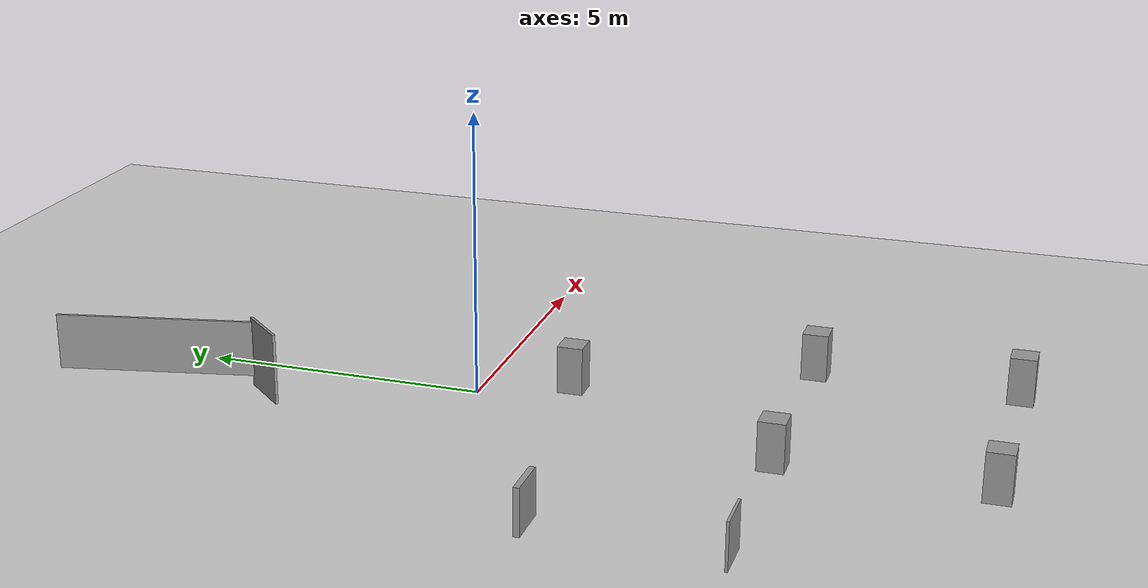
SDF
<sdf version="1.7">
 <world name="default">
  <light name="sun" type="directional">
   <pose>0 0 10 0 -0 0</pose>
   <diffuse>0.8 0.8 0.8 1</diffuse>
   <specular>0.2 0.2 0.2 1</specular>
   <attenuation>
    <range>1000</range>
    <constant>0.9</constant>
    <linear>0.01</linear>
    <quadratic>0.001</quadratic>
   </attenuation>
   <direction>0 0.5 -0.9</direction>
   <spot><inner_angle>0</inner_angle><outer_angle>0</outer_angle><falloff>0</falloff></spot>
  </light>
  <light name="point_light" type="point">
   <pose>0 -0.377195 6.59868 0 -0 0</pose>
   <diffuse>0.784314 0.784314 0.784314 1</diffuse>
   <specular>0.0980392 0.0980392 0.0980392 1</specular>
   <attenuation>
    <range>50</range>
    <constant>0.8</constant>
    <linear>0</linear>
    <quadratic>0.001</quadratic>
   </attenuation>
   <cast_shadows>0</cast_shadows>
   <direction>0 0 -1</direction>
   <spot><inner_angle>0</inner_angle><outer_angle>0</outer_angle><falloff>0</falloff></spot>
  </light>
  <model name="ground_plane">
   <static>1</static>
   <link name="link">
    <collision name="collision">
     <geometry><plane><normal>0 0 1</normal><size>100 100</size></plane></geometry>
     <surface>
      <contact><collide_bitmask>65535</collide_bitmask></contact>
      <friction><ode><mu>100</mu><mu2>50</mu2></ode></friction>
     </surface>
    </collision>
    <visual name="visual">
     <cast_shadows>0</cast_shadows>
     <geometry><plane><normal>0 0 1</normal><size>100 100</size></plane></geometry>
     <material>
      <script><uri>file://media/materials/scripts/gazebo.material</uri><name>Gazebo/Grey</name></script>
     </material>
    </visual>
   </link>
  </model>
  <gravity>0 0 -9.8</gravity>
  <magnetic_field>6e-06 2.3e-05 -4.2e-05</magnetic_field>
  <atmosphere type="adiabatic"/>
  <physics type="ode">
   <max_step_size>0.001</max_step_size>
   <real_time_factor>1</real_time_factor>
   <real_time_update_rate>1000</real_time_update_rate>
  </physics>
  <scene><ambient>0.4 0.4 0.4 1</ambient><background>0.7 0.7 0.7 1</background><shadows>1</shadows></scene>
  <spherical_coordinates>
   <surface_model>EARTH_WGS84</surface_model>
   <latitude_deg>0</latitude_deg>
   <longitude_deg>0</longitude_deg>
   <elevation>0</elevation>
   <heading_deg>0</heading_deg>
  </spherical_coordinates>
  <model name="table_wall_1">
   <link name="link">
    <inertial>
     <mass>1</mass>
     <inertia>
      <ixx>0.166667</ixx>
      <ixy>0</ixy>
      <ixz>0</ixz>
      <iyy>0.166667</iyy>
      <iyz>0</iyz>
      <izz>0.166667</izz>
     </inertia>
    </inertial>
    <pose>-0.045905 -0.224669 0 0 -0 0.842734</pose>
    <visual name="visual">
     <geometry><box><size>1 0.05 1.5</size></box></geometry>
     <material>
      <script><name>Gazebo/Grey</name><uri>file://media/materials/scripts/gazebo.material</uri></script>
      <shader type="pixel"><normal_map>__default__</normal_map></shader>
      <ambient>0.3 0.3 0.3 1</ambient>
      <diffuse>0.7 0.7 0.7 1</diffuse>
      <specular>0.01 0.01 0.01 1</specular>
      <emissive>0 0 0 1</emissive>
     </material>
    </visual>
    <collision name="collision">
     <geometry><box><size>1 0.05 1.5</size></box></geometry>
     <surface>
      <friction>
       <ode><mu>1</mu><mu2>1</mu2><fdir1>0 0 0</fdir1><slip1>0</slip1><slip2>0</slip2></ode>
       <torsional>
        <coefficient>1</coefficient>
        <patch_radius>0</patch_radius>
        <surface_radius>0</surface_radius>
        <use_patch_radius>1</use_patch_radius>
        <ode><slip>0</slip></ode>
       </torsional>
      </friction>
      <bounce><restitution_coefficient>0</restitution_coefficient><threshold>1e+06</threshold></bounce>
      <contact>
       <collide_without_contact>0</collide_without_contact>
       <collide_without_contact_bitmask>1</collide_without_contact_bitmask>
       <collide_bitmask>1</collide_bitmask>
       <ode>
        <soft_cfm>0</soft_cfm>
        <soft_erp>0.2</soft_erp>
        <kp>1e+13</kp>
        <kd>1</kd>
        <max_vel>0.01</max_vel>
        <min_depth>0</min_depth>
       </ode>
       <bullet>
        <split_impulse>1</split_impulse>
        <split_impulse_penetration_threshold>-0.01</split_impulse_penetration_threshold>
        <soft_cfm>0</soft_cfm>
        <soft_erp>0.2</soft_erp>
        <kp>1e+13</kp>
        <kd>1</kd>
       </bullet>
      </contact>
     </surface>
    </collision>
   </link>
   <static>1</static>
   <pose>-1.12847 3.6998 0.5 0 -0 0</pose>
  </model>
  <model name="table_leg_thin">
   <link name="link_2">
    <inertial>
     <mass>1</mass>
     <inertia>
      <ixx>0.166667</ixx>
      <ixy>0</ixy>
      <ixz>0</ixz>
      <iyy>0.166667</iyy>
      <iyz>0</iyz>
      <izz>0.166667</izz>
     </inertia>
    </inertial>
    <pose>-1e-06 5e-06 0 0 -0 0</pose>
    <visual name="visual">
     <geometry><box><size>0.75 0.1 0.8</size></box></geometry>
     <material>
      <lighting>1</lighting>
      <script><uri>file://media/materials/scripts/gazebo.material</uri><name>Gazebo/Grey</name></script>
      <shader type="pixel"><normal_map>__default__</normal_map></shader>
      <ambient>0.3 0.3 0.3 1</ambient>
      <diffuse>0.7 0.7 0.7 1</diffuse>
      <specular>0.01 0.01 0.01 1</specular>
      <emissive>0 0 0 1</emissive>
     </material>
    </visual>
    <collision name="collision">
     <geometry><box><size>0.75 0.1 0.8</size></box></geometry>
     <surface>
      <friction>
       <ode><mu>1</mu><mu2>1</mu2><fdir1>0 0 0</fdir1><slip1>0</slip1><slip2>0</slip2></ode>
       <torsional>
        <coefficient>1</coefficient>
        <patch_radius>0</patch_radius>
        <surface_radius>0</surface_radius>
        <use_patch_radius>1</use_patch_radius>
        <ode><slip>0</slip></ode>
       </torsional>
      </friction>
      <bounce><restitution_coefficient>0</restitution_coefficient><threshold>1e+06</threshold></bounce>
      <contact>
       <collide_without_contact>0</collide_without_contact>
       <collide_without_contact_bitmask>1</collide_without_contact_bitmask>
       <collide_bitmask>1</collide_bitmask>
       <ode>
        <soft_cfm>0</soft_cfm>
        <soft_erp>0.2</soft_erp>
        <kp>1e+13</kp>
        <kd>1</kd>
        <max_vel>0.01</max_vel>
        <min_depth>0</min_depth>
       </ode>
       <bullet>
        <split_impulse>1</split_impulse>
        <split_impulse_penetration_threshold>-0.01</split_impulse_penetration_threshold>
        <soft_cfm>0</soft_cfm>
        <soft_erp>0.2</soft_erp>
        <kp>1e+13</kp>
        <kd>1</kd>
       </bullet>
      </contact>
     </surface>
    </collision>
   </link>
   <static>1</static>
   <allow_auto_disable>0</allow_auto_disable>
   <pose>-4.67945 -2.44706 0.5 0 -0 0</pose>
  </model>
  <model name="table_leg_thinn">
   <link name="link_2">
    <inertial>
     <mass>1</mass>
     <inertia>
      <ixx>0.166667</ixx>
      <ixy>0</ixy>
      <ixz>0</ixz>
      <iyy>0.166667</iyy>
      <iyz>0</iyz>
      <izz>0.166667</izz>
     </inertia>
    </inertial>
    <pose>-1e-06 5e-06 0 0 -0 0</pose>
    <visual name="visual">
     <geometry><box><size>0.75 0.045 0.8</size></box></geometry>
     <material>
      <lighting>1</lighting>
      <script><uri>file://media/materials/scripts/gazebo.material</uri><name>Gazebo/Grey</name></script>
      <shader type="pixel"><normal_map>__default__</normal_map></shader>
      <ambient>0.3 0.3 0.3 1</ambient>
      <diffuse>0.7 0.7 0.7 1</diffuse>
      <specular>0.01 0.01 0.01 1</specular>
      <emissive>0 0 0 1</emissive>
     </material>
    </visual>
    <collision name="collision">
     <geometry><box><size>0.75 0.045 0.8</size></box></geometry>
     <surface>
      <friction>
       <ode><mu>1</mu><mu2>1</mu2><fdir1>0 0 0</fdir1><slip1>0</slip1><slip2>0</slip2></ode>
       <torsional>
        <coefficient>1</coefficient>
        <patch_radius>0</patch_radius>
        <surface_radius>0</surface_radius>
        <use_patch_radius>1</use_patch_radius>
        <ode><slip>0</slip></ode>
       </torsional>
      </friction>
      <bounce><restitution_coefficient>0</restitution_coefficient><threshold>1e+06</threshold></bounce>
      <contact>
       <collide_without_contact>0</collide_without_contact>
       <collide_without_contact_bitmask>1</collide_without_contact_bitmask>
       <collide_bitmask>1</collide_bitmask>
       <ode>
        <soft_cfm>0</soft_cfm>
        <soft_erp>0.2</soft_erp>
        <kp>1e+13</kp>
        <kd>1</kd>
        <max_vel>0.01</max_vel>
        <min_depth>0</min_depth>
       </ode>
       <bullet>
        <split_impulse>1</split_impulse>
        <split_impulse_penetration_threshold>-0.01</split_impulse_penetration_threshold>
        <soft_cfm>0</soft_cfm>
        <soft_erp>0.2</soft_erp>
        <kp>1e+13</kp>
        <kd>1</kd>
       </bullet>
      </contact>
     </surface>
    </collision>
   </link>
   <static>1</static>
   <pose>-4.67706 -5.56959 0.456298 0 -0 0</pose>
  </model>
  <model name="table_leg_long">
   <link name="link">
    <inertial>
     <mass>1</mass>
     <inertia>
      <ixx>0.166667</ixx>
      <ixy>0</ixy>
      <ixz>0</ixz>
      <iyy>0.166667</iyy>
      <iyz>0</iyz>
      <izz>0.166667</izz>
     </inertia>
    </inertial>
    <pose>-0.172485 -0.052465 0.171943 0 0 -1.56149</pose>
    <visual name="visual">
     <geometry><box><size>3.5 0.05 1</size></box></geometry>
     <material>
      <script><name>Gazebo/Grey</name><uri>file://media/materials/scripts/gazebo.material</uri></script>
      <shader type="pixel"><normal_map>__default__</normal_map></shader>
      <ambient>0.3 0.3 0.3 1</ambient>
      <diffuse>0.7 0.7 0.7 1</diffuse>
      <specular>0.01 0.01 0.01 1</specular>
      <emissive>0 0 0 1</emissive>
     </material>
    </visual>
    <collision name="collision">
     <geometry><box><size>3.5 0.05 1</size></box></geometry>
     <surface>
      <friction>
       <ode><mu>1</mu><mu2>1</mu2><fdir1>0 0 0</fdir1><slip1>0</slip1><slip2>0</slip2></ode>
       <torsional>
        <coefficient>1</coefficient>
        <patch_radius>0</patch_radius>
        <surface_radius>0</surface_radius>
        <use_patch_radius>1</use_patch_radius>
        <ode><slip>0</slip></ode>
       </torsional>
      </friction>
      <bounce><restitution_coefficient>0</restitution_coefficient><threshold>1e+06</threshold></bounce>
      <contact>
       <collide_without_contact>0</collide_without_contact>
       <collide_without_contact_bitmask>1</collide_without_contact_bitmask>
       <collide_bitmask>1</collide_bitmask>
       <ode>
        <soft_cfm>0</soft_cfm>
        <soft_erp>0.2</soft_erp>
        <kp>1e+13</kp>
        <kd>1</kd>
        <max_vel>0.01</max_vel>
        <min_depth>0</min_depth>
       </ode>
       <bullet>
        <split_impulse>1</split_impulse>
        <split_impulse_penetration_threshold>-0.01</split_impulse_penetration_threshold>
        <soft_cfm>0</soft_cfm>
        <soft_erp>0.2</soft_erp>
        <kp>1e+13</kp>
        <kd>1</kd>
       </bullet>
      </contact>
     </surface>
    </collision>
   </link>
   <static>1</static>
   <pose>-1.07969 5.62499 0.5 0 -0 0.20067</pose>
  </model>
  <model name="table_legg">
   <link name="link_0">
    <inertial>
     <mass>1</mass>
     <inertia>
      <ixx>0.166667</ixx>
      <ixy>0</ixy>
      <ixz>0</ixz>
      <iyy>0.166667</iyy>
      <iyz>0</iyz>
      <izz>0.166667</izz>
     </inertia>
    </inertial>
    <pose>0.047838 -0.022607 -0.085297 -0.082248 0.059205 0.012938</pose>
    <visual name="visual">
     <geometry><box><size>0.45 0.45 0.85</size></box></geometry>
     <material>
      <lighting>1</lighting>
      <script><uri>file://media/materials/scripts/gazebo.material</uri><name>Gazebo/Grey</name></script>
      <shader type="pixel"><normal_map>__default__</normal_map></shader>
      <ambient>0.3 0.3 0.3 1</ambient>
      <diffuse>0.7 0.7 0.7 1</diffuse>
      <specular>0.01 0.01 0.01 1</specular>
      <emissive>0 0 0 1</emissive>
     </material>
    </visual>
    <collision name="collision">
     <geometry><box><size>0.45 0.45 0.85</size></box></geometry>
     <surface>
      <friction>
       <ode><mu>1</mu><mu2>1</mu2><fdir1>0 0 0</fdir1><slip1>0</slip1><slip2>0</slip2></ode>
       <torsional>
        <coefficient>1</coefficient>
        <patch_radius>0</patch_radius>
        <surface_radius>0</surface_radius>
        <use_patch_radius>1</use_patch_radius>
        <ode><slip>0</slip></ode>
       </torsional>
      </friction>
      <bounce><restitution_coefficient>0</restitution_coefficient><threshold>1e+06</threshold></bounce>
      <contact>
       <collide_without_contact>0</collide_without_contact>
       <collide_without_contact_bitmask>1</collide_without_contact_bitmask>
       <collide_bitmask>1</collide_bitmask>
       <ode>
        <soft_cfm>0</soft_cfm>
        <soft_erp>0.2</soft_erp>
        <kp>1e+13</kp>
        <kd>1</kd>
        <max_vel>0.01</max_vel>
        <min_depth>0</min_depth>
       </ode>
       <bullet>
        <split_impulse>1</split_impulse>
        <split_impulse_penetration_threshold>-0.01</split_impulse_penetration_threshold>
        <soft_cfm>0</soft_cfm>
        <soft_erp>0.2</soft_erp>
        <kp>1e+13</kp>
        <kd>1</kd>
       </bullet>
      </contact>
     </surface>
    </collision>
   </link>
   <static>1</static>
   <pose>0.439816 -1.57603 0.583964 0.083146 -0.057935 -0.017786</pose>
  </model>
  <model name="table_legg_clone">
   <link name="link_0">
    <inertial>
     <mass>1</mass>
     <inertia>
      <ixx>0.166667</ixx>
      <ixy>0</ixy>
      <ixz>0</ixz>
      <iyy>0.166667</iyy>
      <iyz>0</iyz>
      <izz>0.166667</izz>
     </inertia>
    </inertial>
    <pose>0.047838 -0.022607 -0.085297 -0.082248 0.059205 0.012938</pose>
    <visual name="visual">
     <geometry><box><size>0.45 0.45 0.85</size></box></geometry>
     <material>
      <lighting>1</lighting>
      <script><uri>file://media/materials/scripts/gazebo.material</uri><name>Gazebo/Grey</name></script>
      <shader type="pixel"><normal_map>__default__</normal_map></shader>
      <ambient>0.3 0.3 0.3 1</ambient>
      <diffuse>0.7 0.7 0.7 1</diffuse>
      <specular>0.01 0.01 0.01 1</specular>
      <emissive>0 0 0 1</emissive>
     </material>
    </visual>
    <collision name="collision">
     <geometry><box><size>0.45 0.45 0.85</size></box></geometry>
     <surface>
      <friction>
       <ode><mu>1</mu><mu2>1</mu2><fdir1>0 0 0</fdir1><slip1>0</slip1><slip2>0</slip2></ode>
       <torsional>
        <coefficient>1</coefficient>
        <patch_radius>0</patch_radius>
        <surface_radius>0</surface_radius>
        <use_patch_radius>1</use_patch_radius>
        <ode><slip>0</slip></ode>
       </torsional>
      </friction>
      <bounce><restitution_coefficient>0</restitution_coefficient><threshold>1e+06</threshold></bounce>
      <contact>
       <collide_without_contact>0</collide_without_contact>
       <collide_without_contact_bitmask>1</collide_without_contact_bitmask>
       <collide_bitmask>1</collide_bitmask>
       <ode>
        <soft_cfm>0</soft_cfm>
        <soft_erp>0.2</soft_erp>
        <kp>1e+13</kp>
        <kd>1</kd>
        <max_vel>0.01</max_vel>
        <min_depth>0</min_depth>
       </ode>
       <bullet>
        <split_impulse>1</split_impulse>
        <split_impulse_penetration_threshold>-0.01</split_impulse_penetration_threshold>
        <soft_cfm>0</soft_cfm>
        <soft_erp>0.2</soft_erp>
        <kp>1e+13</kp>
        <kd>1</kd>
       </bullet>
      </contact>
     </surface>
    </collision>
   </link>
   <static>1</static>
   <pose>2.34142 -5.4584 0.583964 0.083146 -0.057935 -0.017786</pose>
  </model>
  <model name="table_legg_clone_0">
   <link name="link_0">
    <inertial>
     <mass>1</mass>
     <inertia>
      <ixx>0.166667</ixx>
      <ixy>0</ixy>
      <ixz>0</ixz>
      <iyy>0.166667</iyy>
      <iyz>0</iyz>
      <izz>0.166667</izz>
     </inertia>
    </inertial>
    <pose>0.047838 -0.022607 -0.085297 -0.082248 0.059205 0.012938</pose>
    <visual name="visual">
     <geometry><box><size>0.45 0.45 0.85</size></box></geometry>
     <material>
      <lighting>1</lighting>
      <script><uri>file://media/materials/scripts/gazebo.material</uri><name>Gazebo/Grey</name></script>
      <shader type="pixel"><normal_map>__default__</normal_map></shader>
      <ambient>0.3 0.3 0.3 1</ambient>
      <diffuse>0.7 0.7 0.7 1</diffuse>
      <specular>0.01 0.01 0.01 1</specular>
      <emissive>0 0 0 1</emissive>
     </material>
    </visual>
    <collision name="collision">
     <geometry><box><size>0.45 0.45 0.85</size></box></geometry>
     <surface>
      <friction>
       <ode><mu>1</mu><mu2>1</mu2><fdir1>0 0 0</fdir1><slip1>0</slip1><slip2>0</slip2></ode>
       <torsional>
        <coefficient>1</coefficient>
        <patch_radius>0</patch_radius>
        <surface_radius>0</surface_radius>
        <use_patch_radius>1</use_patch_radius>
        <ode><slip>0</slip></ode>
       </torsional>
      </friction>
      <bounce><restitution_coefficient>0</restitution_coefficient><threshold>1e+06</threshold></bounce>
      <contact>
       <collide_without_contact>0</collide_without_contact>
       <collide_without_contact_bitmask>1</collide_without_contact_bitmask>
       <collide_bitmask>1</collide_bitmask>
       <ode>
        <soft_cfm>0</soft_cfm>
        <soft_erp>0.2</soft_erp>
        <kp>1e+13</kp>
        <kd>1</kd>
        <max_vel>0.01</max_vel>
        <min_depth>0</min_depth>
       </ode>
       <bullet>
        <split_impulse>1</split_impulse>
        <split_impulse_penetration_threshold>-0.01</split_impulse_penetration_threshold>
        <soft_cfm>0</soft_cfm>
        <soft_erp>0.2</soft_erp>
        <kp>1e+13</kp>
        <kd>1</kd>
       </bullet>
      </contact>
     </surface>
    </collision>
   </link>
   <static>1</static>
   <pose>-1.55505 -5.48637 0.583964 0.083146 -0.057935 -0.017786</pose>
  </model>
  <model name="table_legg_clone_1">
   <link name="link_0">
    <inertial>
     <mass>1</mass>
     <inertia>
      <ixx>0.166667</ixx>
      <ixy>0</ixy>
      <ixz>0</ixz>
      <iyy>0.166667</iyy>
      <iyz>0</iyz>
      <izz>0.166667</izz>
     </inertia>
    </inertial>
    <pose>0.047838 -0.022607 -0.085297 -0.082248 0.059205 0.012938</pose>
    <visual name="visual">
     <geometry><box><size>0.45 0.45 0.85</size></box></geometry>
     <material>
      <lighting>1</lighting>
      <script><uri>file://media/materials/scripts/gazebo.material</uri><name>Gazebo/Grey</name></script>
      <shader type="pixel"><normal_map>__default__</normal_map></shader>
      <ambient>0.3 0.3 0.3 1</ambient>
      <diffuse>0.7 0.7 0.7 1</diffuse>
      <specular>0.01 0.01 0.01 1</specular>
      <emissive>0 0 0 1</emissive>
     </material>
    </visual>
    <collision name="collision">
     <geometry><box><size>0.45 0.45 0.85</size></box></geometry>
     <surface>
      <friction>
       <ode><mu>1</mu><mu2>1</mu2><fdir1>0 0 0</fdir1><slip1>0</slip1><slip2>0</slip2></ode>
       <torsional>
        <coefficient>1</coefficient>
        <patch_radius>0</patch_radius>
        <surface_radius>0</surface_radius>
        <use_patch_radius>1</use_patch_radius>
        <ode><slip>0</slip></ode>
       </torsional>
      </friction>
      <bounce><restitution_coefficient>0</restitution_coefficient><threshold>1e+06</threshold></bounce>
      <contact>
       <collide_without_contact>0</collide_without_contact>
       <collide_without_contact_bitmask>1</collide_without_contact_bitmask>
       <collide_bitmask>1</collide_bitmask>
       <ode>
        <soft_cfm>0</soft_cfm>
        <soft_erp>0.2</soft_erp>
        <kp>1e+13</kp>
        <kd>1</kd>
        <max_vel>0.01</max_vel>
        <min_depth>0</min_depth>
       </ode>
       <bullet>
        <split_impulse>1</split_impulse>
        <split_impulse_penetration_threshold>-0.01</split_impulse_penetration_threshold>
        <soft_cfm>0</soft_cfm>
        <soft_erp>0.2</soft_erp>
        <kp>1e+13</kp>
        <kd>1</kd>
       </bullet>
      </contact>
     </surface>
    </collision>
   </link>
   <static>1</static>
   <pose>2.33829 -8.99217 0.583964 0.083146 -0.057935 -0.017786</pose>
  </model>
  <model name="table_legg_clone_2">
   <link name="link_0">
    <inertial>
     <mass>1</mass>
     <inertia>
      <ixx>0.166667</ixx>
      <ixy>0</ixy>
      <ixz>0</ixz>
      <iyy>0.166667</iyy>
      <iyz>0</iyz>
      <izz>0.166667</izz>
     </inertia>
    </inertial>
    <pose>0.047838 -0.022607 -0.085297 -0.082248 0.059205 0.012938</pose>
    <visual name="visual">
     <geometry><box><size>0.45 0.45 0.85</size></box></geometry>
     <material>
      <lighting>1</lighting>
      <script><uri>file://media/materials/scripts/gazebo.material</uri><name>Gazebo/Grey</name></script>
      <shader type="pixel"><normal_map>__default__</normal_map></shader>
      <ambient>0.3 0.3 0.3 1</ambient>
      <diffuse>0.7 0.7 0.7 1</diffuse>
      <specular>0.01 0.01 0.01 1</specular>
      <emissive>0 0 0 1</emissive>
     </material>
    </visual>
    <collision name="collision">
     <geometry><box><size>0.45 0.45 0.85</size></box></geometry>
     <surface>
      <friction>
       <ode><mu>1</mu><mu2>1</mu2><fdir1>0 0 0</fdir1><slip1>0</slip1><slip2>0</slip2></ode>
       <torsional>
        <coefficient>1</coefficient>
        <patch_radius>0</patch_radius>
        <surface_radius>0</surface_radius>
        <use_patch_radius>1</use_patch_radius>
        <ode><slip>0</slip></ode>
       </torsional>
      </friction>
      <bounce><restitution_coefficient>0</restitution_coefficient><threshold>1e+06</threshold></bounce>
      <contact>
       <collide_without_contact>0</collide_without_contact>
       <collide_without_contact_bitmask>1</collide_without_contact_bitmask>
       <collide_bitmask>1</collide_bitmask>
       <ode>
        <soft_cfm>0</soft_cfm>
        <soft_erp>0.2</soft_erp>
        <kp>1e+13</kp>
        <kd>1</kd>
        <max_vel>0.01</max_vel>
        <min_depth>0</min_depth>
       </ode>
       <bullet>
        <split_impulse>1</split_impulse>
        <split_impulse_penetration_threshold>-0.01</split_impulse_penetration_threshold>
        <soft_cfm>0</soft_cfm>
        <soft_erp>0.2</soft_erp>
        <kp>1e+13</kp>
        <kd>1</kd>
       </bullet>
      </contact>
     </surface>
    </collision>
   </link>
   <static>1</static>
   <pose>-1.57708 -8.97249 0.583964 0.083146 -0.057935 -0.017786</pose>
  </model>
 </world>
</sdf>
